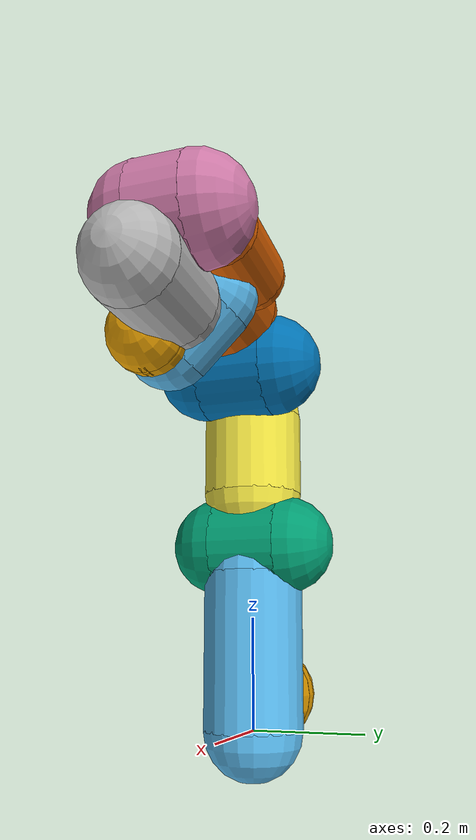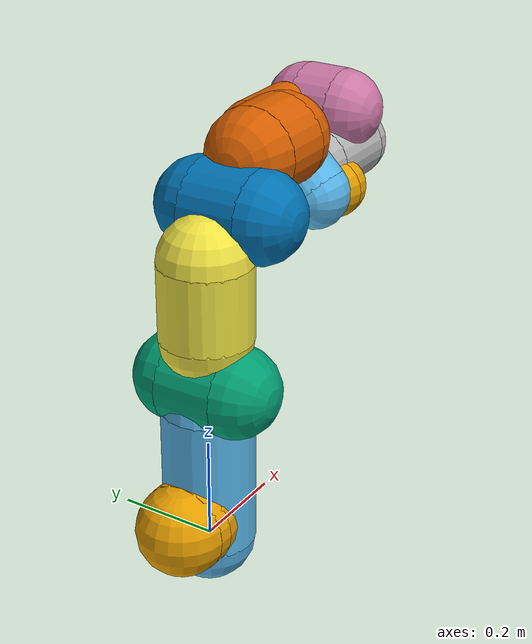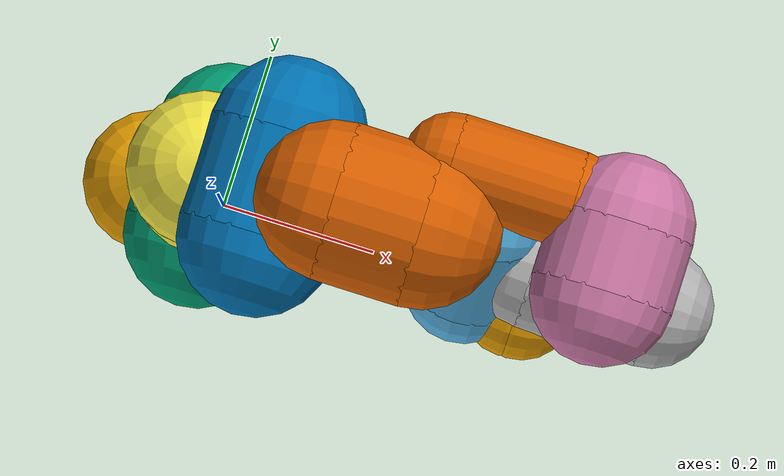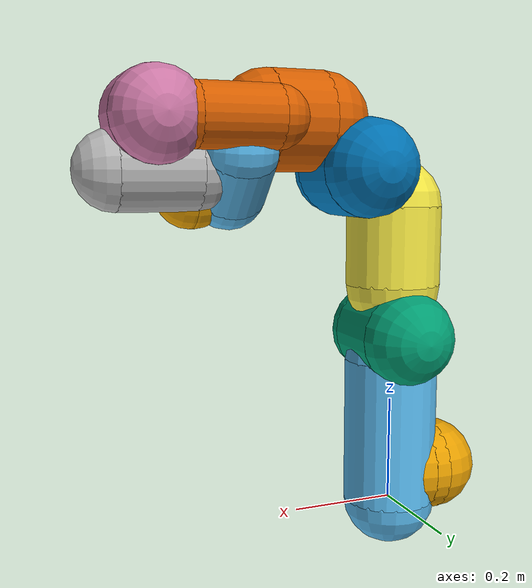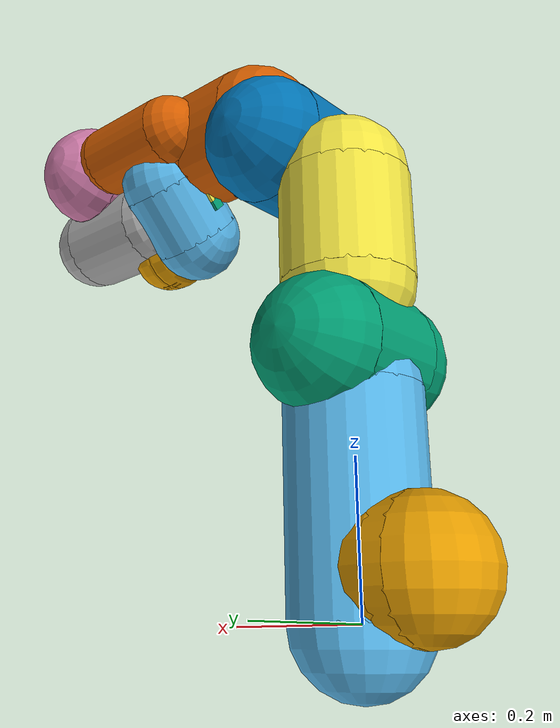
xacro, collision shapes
<?xml version="1.0" encoding="utf-8"?>
<robot xmlns:xacro="http://www.ros.org/wiki/xacro" name="panda">
  <xacro:include filename="$(find franka_description)/robots/panda_arm.xacro"/>
  <xacro:include filename="$(find franka_description)/robots/hand.xacro"/>
  <xacro:include filename="$(find franka_description)/robots/panda.ros2_control.xacro"/>

  <!-- for simulation -->
  <xacro:arg name="effort_ifce" default="true"/>
  <xacro:include filename="$(find franka_description)/robots/panda.gazebo.xacro"/>
  <xacro:if value="$(arg effort_ifce)">
          <xacro:include filename="$(find franka_description)/robots/panda.transmission.xacro"/>
  </xacro:if>
  <xacro:unless value="$(arg effort_ifce)">
          <xacro:include filename="$(find franka_description)/robots/panda.transmission.vel.xacro"/>
  </xacro:unless>
  <!-- end for simulation -->

  <!-- ros2_control -->
  <xacro:arg name="arm_id" default="panda"/>
  <xacro:arg name="robot_ip" default=""/>
  <xacro:arg name="use_fake_hardware" default="false"/>
  <!-- used by the gazebo/transmission macros -->
  <xacro:arg name="load_gripper" default="true"/>

  <xacro:panda_arm safety_distance="0.03"/>
  <xacro:hand ns="panda" rpy="0 0 ${-pi/4}" connected_to="panda_link8" safety_distance="0.03"/>
  <xacro:panda_ros2_control arm_id="$(arg arm_id)" robot_ip="$(arg robot_ip)"
                             use_fake_hardware="$(arg use_fake_hardware)"/>

  <!-- for simulation -->
  <xacro:arg name="robot_name" default="panda"/>
  <xacro:panda_gazebo robot_name="$(arg robot_name)" />
  <xacro:panda_transmission robot_name="$(arg robot_name)" />
  <!-- end for simulation -->
</robot>

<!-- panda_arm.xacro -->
<robot xmlns:xacro="http://www.ros.org/wiki/xacro" name="panda">
  <!-- safety_distance: Minimum safety distance in [m] by which the collision volumes are expanded and which is enforced during robot motions -->
  <!-- arm_id: Namespace of the panda arm. Serves to differentiate between arms in case of multiple instances. -->
  <xacro:macro name="panda_arm" params="arm_id:='panda' description_pkg:='franka_description' connected_to:='' xyz:='0 0 0' rpy:='0 0 0' safety_distance:=0">
    <xacro:unless value="${not connected_to}">
      <joint name="${arm_id}_joint_${connected_to}" type="fixed">
        <parent link="${connected_to}"/>
        <child link="${arm_id}_link0"/>
        <origin rpy="${rpy}" xyz="${xyz}"/>
      </joint>
    </xacro:unless>

    <!-- for simulation -->
    <xacro:property name="joint_damping" value="0.0"/>
    <!-- end for simulation -->

    <link name="${arm_id}_link0">
      <visual>
        <geometry>
          <mesh filename="package://${description_pkg}/meshes/visual/link0.dae"/>
        </geometry>
      </visual>
      <collision>
        <origin xyz="-0.075 0 0.06" rpy="0 ${pi/2} 0"/>
        <geometry>
          <cylinder radius="${0.06+safety_distance}" length="0.03" />
        </geometry>
      </collision>
      <collision>
        <origin xyz="-0.06 0 0.06" rpy="0 0 0"/>
        <geometry>
          <sphere radius="${0.06+safety_distance}" />
        </geometry>
      </collision>
      <collision>
        <origin xyz="-0.09 0 0.06" rpy="0 0 0"/>
        <geometry>
          <sphere radius="${0.06+safety_distance}" />
        </geometry>
      </collision>

      <!-- for simulation -->
      <inertial>
        <origin xyz="0 0 0" rpy="0 0 0" />
        <mass value="5.0" />
        <inertia ixx="0.0" ixy="0.0" ixz="0.0" iyy="0.0" iyz="0.0" izz="0.0" />
      </inertial>
      <!-- end for simulation -->
    </link>

    <link name="${arm_id}_link1">
      <visual>
        <geometry>
          <mesh filename="package://${description_pkg}/meshes/visual/link1.dae"/>
        </geometry>
      </visual>
      <collision>
        <origin xyz="0 0 -0.1915" rpy="0 0 0"/>
        <geometry>
          <cylinder radius="${0.06+safety_distance}" length="0.2830" />
        </geometry>
      </collision>
      <collision>
        <origin xyz="0 0 -0.333" rpy="0 0 0"/>
        <geometry>
          <sphere radius="${0.06+safety_distance}" />
        </geometry>
      </collision>
      <collision>
        <origin xyz="0 0 -0.05" rpy="0 0 0"/>
        <geometry>
          <sphere radius="${0.06+safety_distance}" />
        </geometry>
      </collision>

      <!-- for simulation -->
      <inertial>
        <origin xyz="0.0038 0.0021 -0.1750" rpy="0 0 0" />
        <mass value="4.9707" />
        <inertia ixx="0.7034" ixy="-0.0001" ixz="0.0068" iyy="0.7066" iyz="0.0197" izz="0.0091" />
      </inertial>
      <!-- end for simulation -->
    </link>
    <joint name="${arm_id}_joint1" type="revolute">
      <safety_controller k_position="100.0" k_velocity="40.0" soft_lower_limit="-2.8973" soft_upper_limit="2.8973"/>
      <origin rpy="0 0 0" xyz="0 0 0.333"/>
      <parent link="${arm_id}_link0"/>
      <child link="${arm_id}_link1"/>
      <axis xyz="0 0 1"/>
      <limit effort="87" lower="-2.8973" upper="2.8973" velocity="2.1750"/>

      <!-- for simulation -->
      <dynamics damping="${joint_damping}" friction="0.546"/>
      <!-- end for simulation -->
    </joint>
    <link name="${arm_id}_link2">
      <visual>
        <geometry>
          <mesh filename="package://${description_pkg}/meshes/visual/link2.dae"/>
        </geometry>
      </visual>
      <collision>
        <origin xyz="0 0 0" rpy="0 0 0"/>
        <geometry>
          <cylinder radius="${0.06+safety_distance}" length="0.12" />
        </geometry>
      </collision>
      <collision>
        <origin xyz="0 0 -0.06" rpy="0 0 0"/>
        <geometry>
          <sphere radius="${0.06+safety_distance}" />
        </geometry>
      </collision>
      <collision>
        <origin xyz="0 0 0.06" rpy="0 0 0"/>
        <geometry>
          <sphere radius="${0.06+safety_distance}" />
        </geometry>
      </collision>

      <!-- for simulation -->
      <inertial>
        <origin xyz="-0.0031 -0.0287 0.0034" rpy="0 0 0" />
        <mass value="0.6469" />
        <inertia ixx="0.0080" ixy="-0.0039" ixz="0.0103" iyy="0.0281" iyz="0.0007" izz="0.0260" />
      </inertial>
      <!-- end for simulation -->
    </link>
    <joint name="${arm_id}_joint2" type="revolute">
      <safety_controller k_position="100.0" k_velocity="40.0" soft_lower_limit="-1.7628" soft_upper_limit="1.7628"/>
      <origin rpy="${-pi/2} 0 0" xyz="0 0 0"/>
      <parent link="${arm_id}_link1"/>
      <child link="${arm_id}_link2"/>
      <axis xyz="0 0 1"/>
      <limit effort="87" lower="-1.7628" upper="1.7628" velocity="2.1750"/>

      <!-- for simulation -->
      <dynamics damping="${joint_damping}" friction="0.87224"/>
      <!-- end for simulation -->
    </joint>
    <link name="${arm_id}_link3">
      <visual>
        <geometry>
          <mesh filename="package://${description_pkg}/meshes/visual/link3.dae"/>
        </geometry>
      </visual>
      <collision>
        <origin xyz="0 0 -0.145" rpy="0 0 0"/>
        <geometry>
          <cylinder radius="${0.06+safety_distance}" length="0.15" />
        </geometry>
      </collision>
      <collision>
        <origin xyz="0 0 -0.22" rpy="0 0 0"/>
        <geometry>
          <sphere radius="${0.06+safety_distance}" />
        </geometry>
      </collision>
      <collision>
        <origin xyz="0 0 -0.07" rpy="0 0 0"/>
        <geometry>
          <sphere radius="${0.06+safety_distance}" />
        </geometry>
      </collision>

      <!-- for simulation -->
      <inertial>
        <origin xyz="0.0275 0.0392 -0.0665" rpy="0 0 0" />
        <mass value="3.2286" />
        <inertia ixx="0.0372" ixy="-0.0047" ixz="-0.0011" iyy="0.03615" iyz="-0.0128" izz="0.0108" />
      </inertial>
      <!-- end for simulation -->
    </link>
    <joint name="${arm_id}_joint3" type="revolute">
      <safety_controller k_position="100.0" k_velocity="40.0" soft_lower_limit="-2.8973" soft_upper_limit="2.8973"/>
      <origin rpy="${pi/2} 0 0" xyz="0 -0.316 0"/>
      <parent link="${arm_id}_link2"/>
      <child link="${arm_id}_link3"/>
      <axis xyz="0 0 1"/>
      <limit effort="87" lower="-2.8973" upper="2.8973" velocity="2.1750"/>

      <!-- for simulation -->
      <dynamics damping="${joint_damping}" friction="0.6406"/>
      <!-- end for simulation -->
    </joint>
    <link name="${arm_id}_link4">
      <visual>
        <geometry>
          <mesh filename="package://${description_pkg}/meshes/visual/link4.dae"/>
        </geometry>
      </visual>
      <collision>
        <origin xyz="0 0 0" rpy="0 0 0"/>
        <geometry>
          <cylinder radius="${0.06+safety_distance}" length="0.12" />
        </geometry>
      </collision>
      <collision>
        <origin xyz="0 0 0.06" rpy="0 0 0"/>
        <geometry>
          <sphere radius="${0.06+safety_distance}" />
        </geometry>
      </collision>
      <collision>
        <origin xyz="0 0 -0.06" rpy="0 0 0"/>
        <geometry>
          <sphere radius="${0.06+safety_distance}" />
        </geometry>
      </collision>

      <!-- for simulation -->
      <inertial>
        <origin xyz="-0.0532 0.1044 0.0274" rpy="0 0 0" />
        <mass value="3.5879" />
        <inertia ixx="0.0259" ixy="0.0078" ixz="-0.0013" iyy="0.0195" iyz="0.0086" izz="0.0283" />
      </inertial>
      <!-- end for simulation -->
    </link>
    <joint name="${arm_id}_joint4" type="revolute">
      <safety_controller k_position="100.0" k_velocity="40.0" soft_lower_limit="-3.0718" soft_upper_limit="-0.0698"/>
      <origin rpy="${pi/2} 0 0" xyz="0.0825 0 0"/>
      <parent link="${arm_id}_link3"/>
      <child link="${arm_id}_link4"/>
      <axis xyz="0 0 1"/>
      <limit effort="87" lower="-3.0718" upper="-0.0698" velocity="2.1750"/>

      <!-- for simulation -->
      <dynamics damping="${joint_damping}" friction="1.2794"/>
      <!-- end for simulation -->
    </joint>
    <link name="${arm_id}_link5">
      <visual>
        <geometry>
          <mesh filename="package://${description_pkg}/meshes/visual/link5.dae"/>
        </geometry>
      </visual>
      <collision>
        <origin xyz="0 0 -0.26" rpy="0 0 0"/>
        <geometry>
          <cylinder radius="${0.06+safety_distance}" length="0.1" />
        </geometry>
      </collision>
      <collision>
        <origin xyz="0 0 -0.31" rpy="0 0 0"/>
        <geometry>
          <sphere radius="${0.06+safety_distance}" />
        </geometry>
      </collision>
      <collision>
        <origin xyz="0 0 -0.21" rpy="0 0 0"/>
        <geometry>
          <sphere radius="${0.06+safety_distance}" />
        </geometry>
      </collision>
      <collision>
        <origin xyz="0 0.08 -0.13" rpy="0 0 0"/>
        <geometry>
          <cylinder radius="${0.025+safety_distance}" length="0.14" />
        </geometry>
      </collision>
      <collision>
        <origin xyz="0 0.08 -0.06" rpy="0 0 0"/>
        <geometry>
          <sphere radius="${0.025+safety_distance}" />
        </geometry>
      </collision>
      <collision>
        <origin xyz="0 0.08 -0.20" rpy="0 0 0"/>
        <geometry>
          <sphere radius="${0.025+safety_distance}" />
        </geometry>
      </collision>
      <!-- for simulation -->
      <inertial>
        <origin xyz="-0.0532 0.1044 0.0274" rpy="0 0 0" />
        <mass value="1.2259" />
        <inertia ixx="0.0355" ixy="-0.0021" ixz="-0.0040" iyy="0.0294" iyz="0.0002" izz="0.0086" />
      </inertial>
      <!-- end for simulation -->
    </link>
    <joint name="${arm_id}_joint5" type="revolute">
      <safety_controller k_position="100.0" k_velocity="40.0" soft_lower_limit="-2.8973" soft_upper_limit="2.8973"/>
      <origin rpy="${-pi/2} 0 0" xyz="-0.0825 0.384 0"/>
      <parent link="${arm_id}_link4"/>
      <child link="${arm_id}_link5"/>
      <axis xyz="0 0 1"/>
      <limit effort="12" lower="-2.8973" upper="2.8973" velocity="2.6100"/>

      <!-- for simulation -->
      <dynamics damping="${joint_damping}" friction="0.839"/>
      <!-- end for simulation -->
    </joint>
    <link name="${arm_id}_link6">
      <visual>
        <geometry>
          <mesh filename="package://${description_pkg}/meshes/visual/link6.dae"/>
        </geometry>
      </visual>
      <collision>
        <origin xyz="0 0 -0.03" rpy="0 0 0"/>
        <geometry>
          <cylinder radius="${0.05+safety_distance}" length="0.08" />
        </geometry>
      </collision>
      <collision>
        <origin xyz="0 0 0.01" rpy="0 0 0"/>
        <geometry>
          <sphere radius="${0.05+safety_distance}" />
        </geometry>
      </collision>
      <collision>
        <origin xyz="0 0 -0.07" rpy="0 0 0"/>
        <geometry>
          <sphere radius="${0.05+safety_distance}" />
        </geometry>
      </collision>

      <!-- for simulation -->
      <inertial>
        <origin xyz="0.0601 -0.0141 -0.0105" rpy="0 0 0" />
        <mass value="1.6665" />
        <inertia ixx="0.0196" ixy="0.0001" ixz="-0.0011" iyy="0.0043" iyz="0.0003" izz="0.0054" />
      </inertial>
      <!-- end for simulation -->
    </link>
    <joint name="${arm_id}_joint6" type="revolute">
      <safety_controller k_position="100.0" k_velocity="40.0" soft_lower_limit="-0.0175" soft_upper_limit="3.7525"/>
      <origin rpy="${pi/2} 0 0" xyz="0 0 0"/>
      <parent link="${arm_id}_link5"/>
      <child link="${arm_id}_link6"/>
      <axis xyz="0 0 1"/>
      <limit effort="12" lower="-0.0175" upper="3.7525" velocity="2.6100"/>

      <!-- for simulation -->
      <dynamics damping="${joint_damping}" friction="0.303"/>
      <!-- end for simulation -->
    </joint>
    <link name="${arm_id}_link7">
      <visual>
        <geometry>
          <mesh filename="package://${description_pkg}/meshes/visual/link7.dae"/>
        </geometry>
      </visual>
      <collision>
        <origin xyz="0 0 0.01" rpy="0 0 0"/>
        <geometry>
          <cylinder radius="${0.04+safety_distance}" length="0.14" />
        </geometry>
      </collision>
      <collision>
        <origin xyz="0 0 0.08" rpy="0 0 0"/>
        <geometry>
          <sphere radius="${0.04+safety_distance}"  />
        </geometry>
      </collision>
      <collision>
        <origin xyz="0 0 -0.06" rpy="0 0 0"/>
        <geometry>
          <sphere radius="${0.04+safety_distance}"  />
        </geometry>
      </collision>

      <!-- for simulation -->
      <inertial>
        <origin xyz="0.0105 -0.0043 0.0616" rpy="0 0 0" />
        <mass value="0.7355" />
        <inertia ixx="0.0125" ixy="-0.0004" ixz="-0.0012" iyy="0.0100" iyz="-0.0007" izz="0.0048" />
      </inertial>
      <!-- end for simulation -->
    </link>
    <joint name="${arm_id}_joint7" type="revolute">
      <safety_controller k_position="100.0" k_velocity="40.0" soft_lower_limit="-2.8973" soft_upper_limit="2.8973"/>
      <origin rpy="${pi/2} 0 0" xyz="0.088 0 0"/>
      <parent link="${arm_id}_link6"/>
      <child link="${arm_id}_link7"/>
      <axis xyz="0 0 1"/>
      <limit effort="12" lower="-2.8973" upper="2.8973" velocity="2.6100"/>

      <!-- for simulation -->
      <dynamics damping="${joint_damping}" friction="0.5649"/>
      <!-- end for simulation -->
    </joint>
    <link name="${arm_id}_link8">
      <collision>
        <origin xyz="0.0424 0.0424 -0.0250" rpy="${pi} ${pi/2} ${pi/2}"/>
        <geometry>
          <cylinder radius="${0.03+safety_distance}"  length="0.01" />
        </geometry>
      </collision>
      <collision>
        <origin xyz="0.0424 0.0424 -0.02" rpy="0 0 0"/>
        <geometry>
          <sphere radius="${0.03+safety_distance}"  />
        </geometry>
      </collision>
      <collision>
        <origin xyz="0.0424 0.0424 -0.03" rpy="0 0 0"/>
        <geometry>
          <sphere radius="${0.03+safety_distance}"  />
        </geometry>
      </collision>
      <!-- for simulation -->
      <inertial>
        <origin xyz="0 0 0" rpy="0 0 0" />
        <mass value="0.1" />
        <inertia ixx="0.0" ixy="0.0" ixz="0.0" iyy="0.0" iyz="0.0" izz="0.0" />
      </inertial>
      <!-- end for simulation -->
    </link>
    <joint name="${arm_id}_joint8" type="fixed">
      <origin rpy="0 0 0" xyz="0 0 0.107"/>
      <parent link="${arm_id}_link7"/>
      <child link="${arm_id}_link8"/>
    </joint>
  </xacro:macro>
</robot>

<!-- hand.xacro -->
<robot xmlns:xacro="http://www.ros.org/wiki/xacro" name="hand">
  <!-- safety_distance: Minimum safety distance in [m] by which the collision volumes are expanded and which is enforced during robot motions -->
  <xacro:macro name="hand" params="connected_to:='' ns:='' rpy:='0 0 0' xyz:='0 0 0' safety_distance:=0">
    <xacro:unless value="${connected_to == ''}">
      <joint name="${ns}_hand_joint" type="fixed">
        <parent link="${connected_to}"/>
        <child link="${ns}_hand"/>
        <origin xyz="${xyz}" rpy="${rpy}"/>
      </joint>
    </xacro:unless>
    <link name="${ns}_hand">
      <visual>
        <geometry>
          <mesh filename="package://franka_description/meshes/visual/hand.dae"/>
        </geometry>
      </visual>
      <collision>
        <origin xyz="0 0 0.04" rpy="0 ${pi/2} ${pi/2}"/>
        <geometry>
          <cylinder radius="${0.04+safety_distance}" length="0.1" />
        </geometry>
      </collision>
      <collision>
        <origin xyz="0 -0.05 0.04" rpy="0 0 0"/>
        <geometry>
          <sphere radius="${0.04+safety_distance}"  />
        </geometry>
      </collision>
      <collision>
        <origin xyz="0 0.05 0.04" rpy="0 0 0"/>
        <geometry>
          <sphere radius="${0.04+safety_distance}"  />
        </geometry>
      </collision>
      <!-- for simulation -->
      <inertial>
        <origin xyz="0 0 0" rpy="0 0 0" />
        <mass value="0.68" />
        <inertia ixx="0.1" ixy="0.0" ixz="0.0" iyy="0.1" iyz="0.0" izz="0.1" />
      </inertial>
      <!-- end for simulation -->
    </link>
    <link name="${ns}_leftfinger">
      <visual>
        <geometry>
          <mesh filename="package://franka_description/meshes/visual/finger.dae"/>
        </geometry>
      </visual>
      <collision>
        <origin xyz="0 0.0075 0.0425" rpy="0 0 0"/>
        <geometry>
          <box size="0.02 0.025 0.025"  />
        </geometry>
      </collision>
      <!-- for simulation -->
      <inertial>
        <origin xyz="0 0 0" rpy="0 0 0" />
        <mass value="0.01" />
        <inertia ixx="0.1" ixy="0.0" ixz="0.0" iyy="0.1" iyz="0.0" izz="0.1" />
      </inertial>
      <!-- end for simulation -->
    </link>
    <link name="${ns}_rightfinger">
      <visual>
        <origin xyz="0 0 0" rpy="0 0 ${pi}"/>
        <geometry>
          <mesh filename="package://franka_description/meshes/visual/finger.dae"/>
        </geometry>
      </visual>
      <collision>
        <origin xyz="0 -0.0075 0.0425" rpy="0 0 0"/>
        <geometry>
          <box size="0.02 0.025 0.025"  />
        </geometry>
      </collision>
      <!-- for simulation -->
      <inertial>
        <origin xyz="0 0 0" rpy="0 0 0" />
        <mass value="0.01" />
        <inertia ixx="0.1" ixy="0.0" ixz="0.0" iyy="0.1" iyz="0.0" izz="0.1" />
      </inertial>
      <!-- end for simulation -->
   </link>
    <joint name="${ns}_finger_joint1" type="prismatic">
      <parent link="${ns}_hand"/>
      <child link="${ns}_leftfinger"/>
      <origin xyz="0 0 0.0584" rpy="0 0 0"/>
      <axis xyz="0 1 0"/>
      <limit effort="20" lower="0.0" upper="0.04" velocity="0.2"/>
    </joint>
    <joint name="${ns}_finger_joint2" type="prismatic">
      <parent link="${ns}_hand"/>
      <child link="${ns}_rightfinger"/>
      <origin xyz="0 0 0.0584" rpy="0 0 0"/>
      <axis xyz="0 -1 0"/>
      <limit effort="20" lower="0.0" upper="0.04" velocity="0.2"/>
      <mimic joint="${ns}_finger_joint1" />
    </joint>
  </xacro:macro>
</robot>
